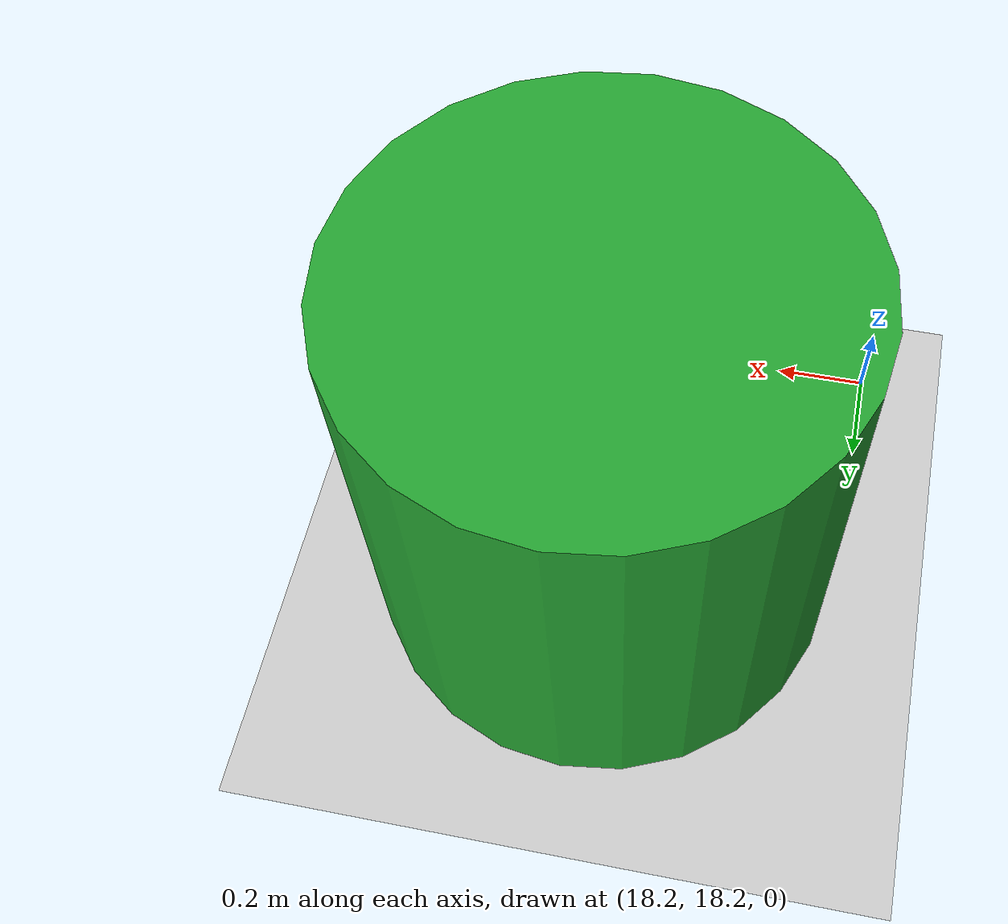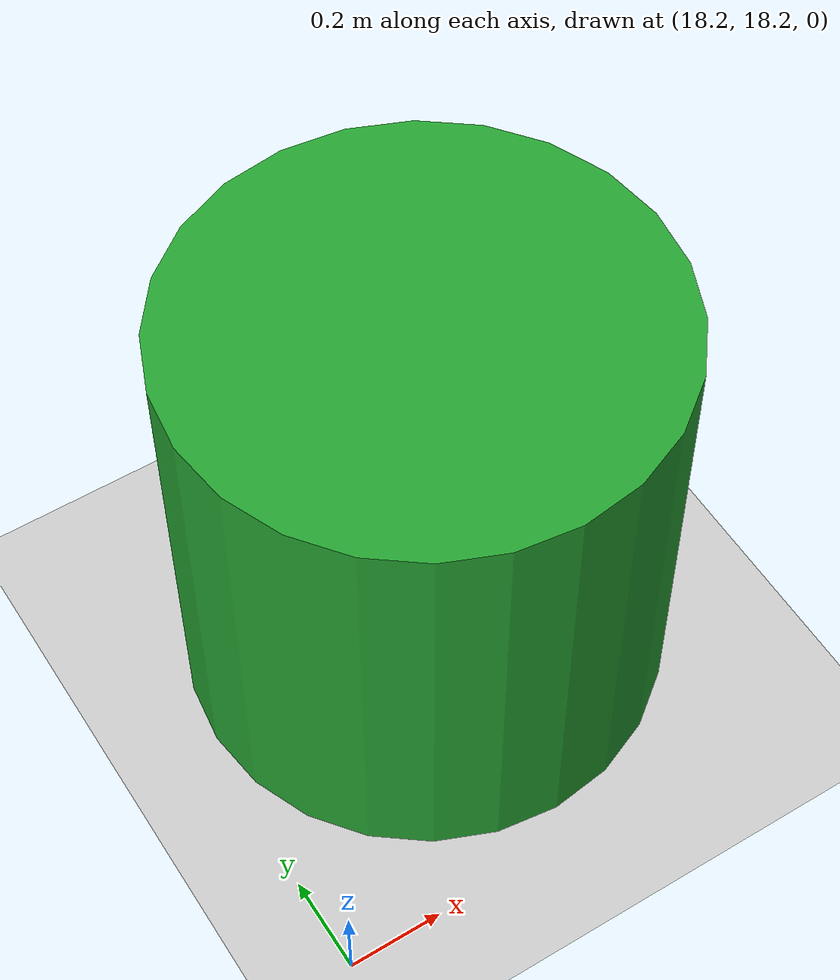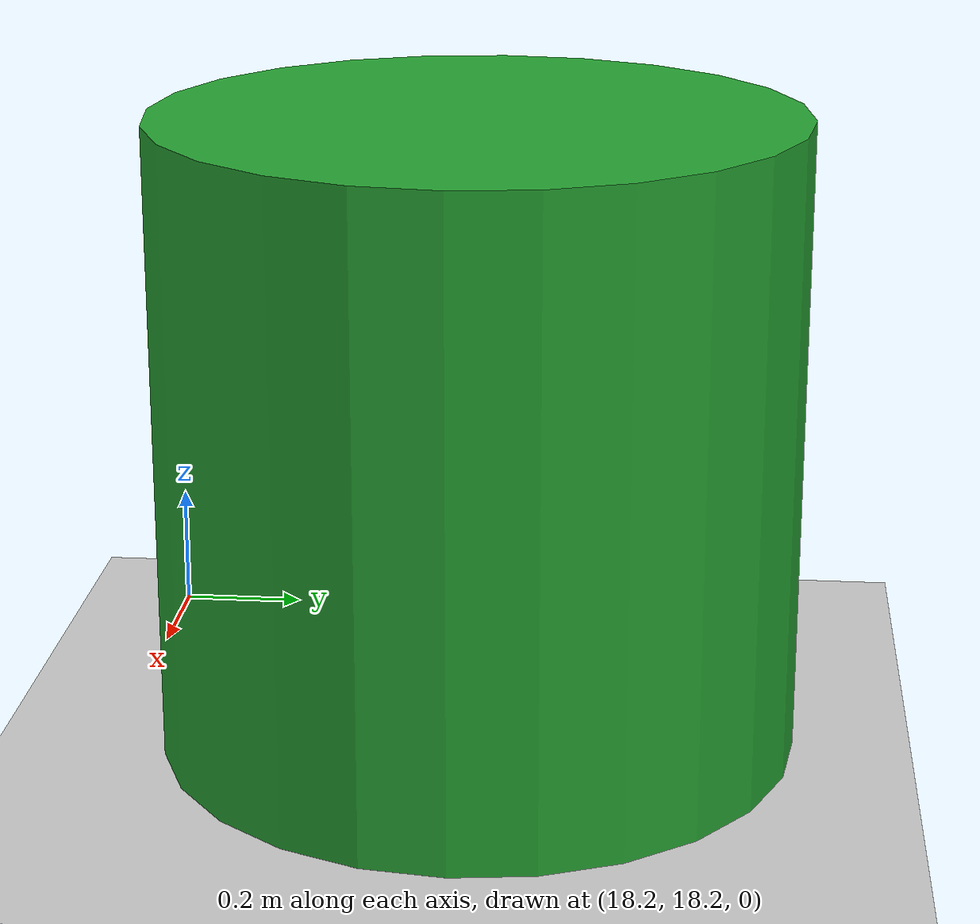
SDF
<sdf version="1.6">
 <world name="default">
  <model name="ground_plane">
   <static>1</static>
   <link name="link">
    <collision name="collision">
     <geometry><plane><normal>0 0 1</normal><size>100 100</size></plane></geometry>
     <surface><friction><ode><mu>100</mu><mu2>50</mu2></ode></friction></surface>
    </collision>
    <visual name="visual">
     <cast_shadows>0</cast_shadows>
     <geometry><plane><normal>0 0 1</normal><size>100 100</size></plane></geometry>
     <material>
      <script><uri>file://media/materials/scripts/gazebo.material</uri><name>Gazebo/Grey</name></script>
     </material>
    </visual>
   </link>
   <pose>5.02484 2.64682 0 0 -0 0</pose>
  </model>
  <model name="unit_cylinder">
   <link name="link">
    <inertial>
     <mass>1</mass>
     <inertia><ixx>0.145833</ixx><ixy>0</ixy><ixz>0</ixz><iyy>0.145833</iyy><iyz>0</iyz><izz>0.125</izz></inertia>
    </inertial>
    <pose>-15.597 10.7078 -0.001274 0 -0 0</pose>
    <visual name="visual">
     <geometry><cylinder><radius>0.5</radius><length>1</length></cylinder></geometry>
     <material>
      <script><name>Gazebo/Green</name><uri>file://media/materials/scripts/gazebo.material</uri></script>
      <shader type="pixel"><normal_map>__default__</normal_map></shader>
      <ambient>0 1 0 1</ambient>
      <diffuse>0.7 0.7 0.7 1</diffuse>
      <specular>0.01 0.01 0.01 1</specular>
      <emissive>0 0 0 1</emissive>
     </material>
    </visual>
    <collision name="collision">
     <geometry><cylinder><radius>0.5</radius><length>1</length></cylinder></geometry>
     <surface>
      <friction>
       <ode><mu>1</mu><mu2>1</mu2><fdir1>0 0 0</fdir1><slip1>0</slip1><slip2>0</slip2></ode>
       <torsional>
        <coefficient>1</coefficient>
        <patch_radius>0</patch_radius>
        <surface_radius>0</surface_radius>
        <use_patch_radius>1</use_patch_radius>
        <ode><slip>0</slip></ode>
       </torsional>
      </friction>
      <bounce><restitution_coefficient>0</restitution_coefficient><threshold>1e+06</threshold></bounce>
      <contact>
       <collide_without_contact>0</collide_without_contact>
       <collide_without_contact_bitmask>1</collide_without_contact_bitmask>
       <collide_bitmask>1</collide_bitmask>
       <ode>
        <soft_cfm>0</soft_cfm>
        <soft_erp>0.2</soft_erp>
        <kp>1e+13</kp>
        <kd>1</kd>
        <max_vel>0.01</max_vel>
        <min_depth>0</min_depth>
       </ode>
       <bullet>
        <split_impulse>1</split_impulse>
        <split_impulse_penetration_threshold>-0.01</split_impulse_penetration_threshold>
        <soft_cfm>0</soft_cfm>
        <soft_erp>0.2</soft_erp>
        <kp>1e+13</kp>
        <kd>1</kd>
       </bullet>
      </contact>
     </surface>
    </collision>
   </link>
   <static>0</static>
   <pose>34.3213 8.0649 0.499096 4.8e-05 4.8e-05 -1e-06</pose>
  </model>
 </world>
</sdf>
